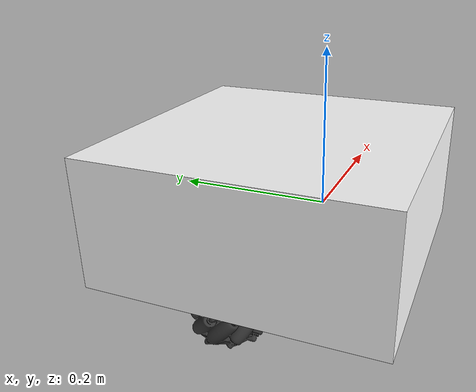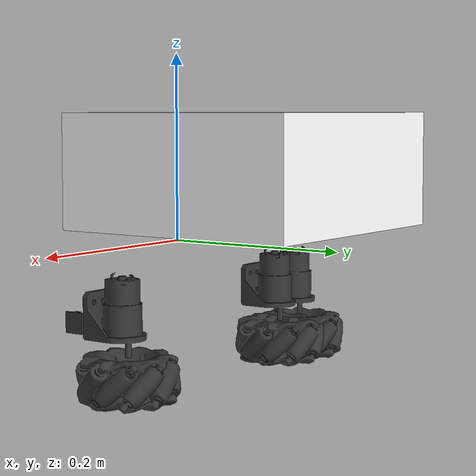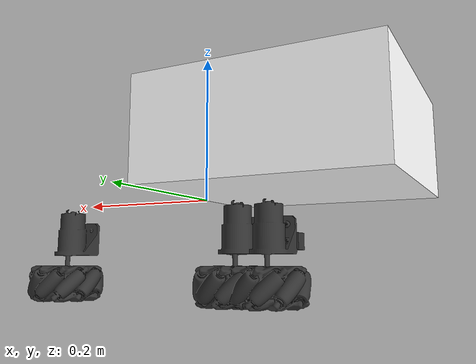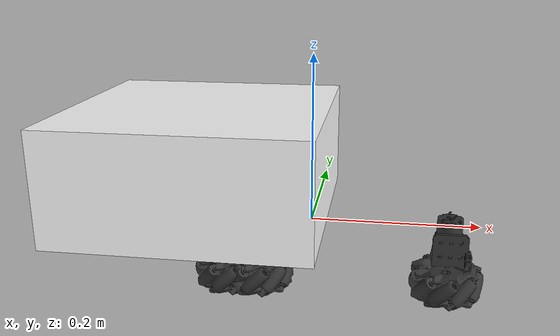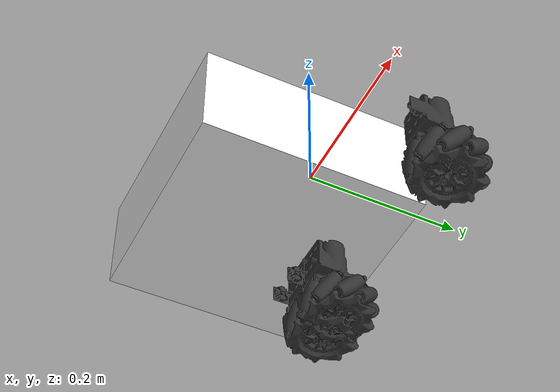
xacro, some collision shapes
<?xml version="1.0" ?>
<robot
    name="sarm"
    xmlns:xacro="http://www.ros.org/wiki/xacro"
    xmlns:gz="http://gazebosim.org/schema"
>

    <xacro:property name="M_PI" value="3.1415926535897931" />

    <xacro:arg name="robot_name" default="sarm" />
    <xacro:arg name="prefix" default="sarm_" />
    <xacro:arg name="use_gazebo" default="false" />

    <!-- Include base and wheels -->
    <xacro:include
        filename="$(find mec_mobile_description)/urdf/mech/sarm_base.urdf.xacro"
    />
    <xacro:include
        filename="$(find mec_mobile_description)/urdf/mech/sarm_mecanum_wheel.urdf.xacro"
    />

    <!-- Include sensors -->

    <!-- Include gazebo control -->

    <!-- Instantiate robot base -->
    <xacro:sarm_base prefix="$(arg prefix)" />

    <!-- Wheels -->
    <xacro:sarm_mecanum_wheel
        prefix="$(arg prefix)"
        side="front_left"
        x_reflect="1"
        y_reflect="1"
    />
    <xacro:sarm_mecanum_wheel
        prefix="$(arg prefix)"
        side="front_right"
        x_reflect="1"
        y_reflect="1"
    />
    <xacro:sarm_mecanum_wheel
        prefix="$(arg prefix)"
        side="back_left"
        x_reflect="-1"
        y_reflect="1"
    />
    <xacro:sarm_mecanum_wheel
        prefix="$(arg prefix)"
        side="back_right"
        x_reflect="-1"
        y_reflect="1"
    />

    <!-- Gazebo friction for wheels -->
    <gazebo reference='$(arg prefix)front_left_wheel_link'>
      <collision>
        <surface>
          <friction>
            <ode>
              <mu>1.5</mu>
              <mu2>0.0</mu2>
              <fdir1
                            gz:expressed_in="$(arg prefix)base_footprint"
                        >1 -1 0</fdir1>
            </ode>
          </friction>
        </surface>
      </collision>
    </gazebo>

    <gazebo reference='$(arg prefix)back_left_wheel_link'>
      <collision>
        <surface>
          <friction>
            <ode>
              <mu>1.5</mu>
              <mu2>0.0</mu2>
              <fdir1 gz:expressed_in="$(arg prefix)base_footprint">1 1 0</fdir1>
            </ode>
          </friction>
        </surface>
      </collision>
    </gazebo>

    <gazebo reference='$(arg prefix)front_right_wheel_link'>
      <collision>
        <surface>
          <friction>
            <ode>
              <mu>1.5</mu>
              <mu2>0.0</mu2>
              <fdir1 gz:expressed_in="$(arg prefix)base_footprint">1 1 0</fdir1>
            </ode>
          </friction>
        </surface>
      </collision>
    </gazebo>

    <gazebo reference='$(arg prefix)back_right_wheel_link'>
      <collision>
        <surface>
          <friction>
            <ode>
              <mu>1.5</mu>
              <mu2>0.0</mu2>
              <fdir1
                            gz:expressed_in="$(arg prefix)base_footprint"
                        >1 -1 0</fdir1>
            </ode>
          </friction>
        </surface>
      </collision>
    </gazebo>

    <!-- Optional base friction -->
    <gazebo reference="$(arg prefix)base_link">
      <mu1>0.000002</mu1>
      <mu2>0.000002</mu2>
    </gazebo>

</robot>

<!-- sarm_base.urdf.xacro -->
<robot xmlns:xacro="http://www.ros.org/wiki/xacro">

  <!-- Properties -->
  <xacro:property name="scale" value="0.001" />
  <xacro:property name="wheel_radius" value="${3.5 * scale}" />
  <xacro:property name="wheel_width" value="${30.5 * scale}" />
  <xacro:property name="total_width" value="${360 * scale}" />
  <xacro:property name="total_height" value="${140 * scale}" />
  <xacro:property name="base_length" value="${300 * scale}" />
  <xacro:property name="centered_length" value="${38.5 * scale}" />
  <xacro:property
        name="base_x_offset"
        value="${(centered_length - base_length)/2}"
    />
  <xacro:property name="base_size_x" value="${base_length}" />
  <xacro:property name="base_size_y" value="${total_width - 2 * wheel_width}" />
  <xacro:property
        name="base_size_z"
        value="${total_height - 2 * wheel_radius}"
    />
  <xacro:property name="base_mass" value="${4.6 * scale * scale * scale}" />

  <xacro:property name="wheel_xoff" value="0.02" />
  <xacro:property name="wheel_yoff" value="0.0" />
  <xacro:property name="wheel_separation" value="0.169" />

  <!-- Macro -->
  <xacro:macro name="sarm_base" params="prefix">
    <!-- Base footprint -->
    <link name="${prefix}base_footprint" />

    <!-- Base link -->
    <link name="${prefix}base_link">
      <visual>
        <geometry>
          <mesh
                        filename="file://$(find mec_mobile_description)/meshes/sarm/chassis.stl"
                        scale="${scale} ${scale} ${scale}"
                    />
        </geometry>
        <material name="white">
          <color rgba="1 1 1 1" />
        </material>
        <origin xyz="0 0 0" rpy="0 0 0" />
      </visual>
      <collision>
        <geometry>
          <box size="${base_size_x} ${base_size_y} ${base_size_z}" />
        </geometry>
        <origin
                    xyz="${base_x_offset} 0 ${base_size_z/2 + wheel_radius/4}"
                    rpy="0 0 0"
                />
      </collision>
      <inertial>
        <origin
                    xyz="${base_x_offset} 0 ${base_size_z/2 + wheel_radius/4}"
                    rpy="0 0 0"
                />
        <mass value="${base_mass}" />
        <inertia
                    ixx="${(1/12) * base_mass * ((base_size_y*base_size_y) + (base_size_z*base_size_z))}"
                    ixy="0.0"
                    ixz="0.0"
                    iyy="${(1/12) * base_mass * ((base_size_x*base_size_x) + (base_size_z*base_size_z))}"
                    iyz="0.0"
                    izz="${(1/12) * base_mass * ((base_size_x*base_size_x) + (base_size_y*base_size_y))}"
                />
      </inertial>
    </link>

    <!-- Gazebo visual -->
    <gazebo reference="${prefix}base_link">
      <visual>
        <material>
          <ambient>0 0.7 0 1</ambient>
          <diffuse>0 0.7 0 1</diffuse>
          <specular>0 0.7 0 1</specular>
        </material>
      </visual>
    </gazebo>

    <!-- Fixed joint to footprint -->
    <joint name="${prefix}base_joint" type="fixed">
      <parent link="${prefix}base_footprint" />
      <child link="${prefix}base_link" />
      <origin xyz="0 0 ${wheel_radius}" rpy="0 0 0" />
    </joint>
  </xacro:macro>

</robot>

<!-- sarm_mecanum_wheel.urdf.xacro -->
<robot xmlns:xacro="http://www.ros.org/wiki/xacro">

<xacro:property name="scale" value="0.001" />
  <xacro:property
        name="wheel_radius"
        value="${3.5 * scale}"
    /> <!-- Remove hardcoded values -->
  <xacro:property name="wheel_separation" value="0.169" />
  <xacro:property name="wheel_width" value="${30.5 * scale}" />
  <xacro:property name="wheel_mass" value="${9.1 * scale * scale * scale}" />
  <xacro:property name="wheel_xoff" value="0.02" />
  <xacro:property name="wheel_yoff" value="0" />

  <xacro:macro
        name="sarm_mecanum_wheel"
        params="prefix side x_reflect y_reflect"
    >
    <link name="${prefix}${side}_wheel_link">
      <visual>
        <origin xyz="0 0 0" rpy="0 0 0" />
        <geometry>
          <mesh
                        filename="file://$(find mec_mobile_description)/meshes/sarm/visual/${side}_wheel.stl"
                        scale="${scale} ${scale} ${scale}"
                    />
        </geometry>
        <material name="dark_gray">
          <color rgba="0.2 0.2 0.2 1.0" />
        </material>
      </visual>

      <collision>
        <origin xyz="0 0 0" rpy="${pi/2} 0 0" />
        <geometry>
          <cylinder radius="${wheel_radius}" length="${wheel_width}" />
        </geometry>
      </collision>

      <inertial>
        <origin xyz="0 0 0" rpy="0 0 0" />
        <mass value="${wheel_mass}" />
        <inertia
                    ixx="${(wheel_mass/12.0) * (3*wheel_radius*wheel_radius + wheel_width*wheel_width)}"
                    ixy="0"
                    ixz="0"
                    iyy="${(wheel_mass/2.0) * (wheel_radius*wheel_radius)}"
                    iyz="0"
                    izz="${(wheel_mass/12.0) * (3*wheel_radius*wheel_radius + wheel_width*wheel_width)}"
                />
      </inertial>
    </link>

    <joint name="${prefix}${side}_wheel_joint" type="continuous">
      <axis xyz="0 1 0" />
      <parent link="${prefix}base_link" />
      <child link="${prefix}${side}_wheel_link" />
      <origin
                xyz="${x_reflect*wheel_xoff} ${y_reflect*(wheel_separation/2+wheel_yoff)} -${wheel_radius}"
                rpy="0 0 0"
            />
    </joint>

    <gazebo reference="${prefix}${side}_wheel_link">
      <surface>
        <friction>
          <ode>
              <mu>1.0</mu>
              <mu2>0.0</mu2>
          </ode>
        </friction>
      </surface>
      <visual>
          <material>
              <ambient>0.2 0.2 0.2 1.0</ambient>
              <diffuse>0.2 0.2 0.2 1.0</diffuse>
              <specular>0.2 0.2 0.2 1.0</specular>
              <emissive>0.0 0.0 0.0 0.0</emissive>
          </material>
      </visual>
  </gazebo>

  </xacro:macro>
</robot>
